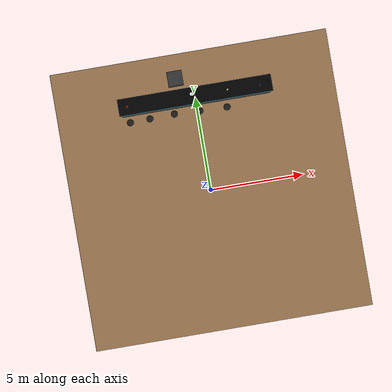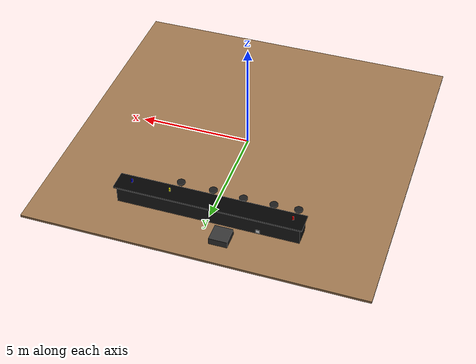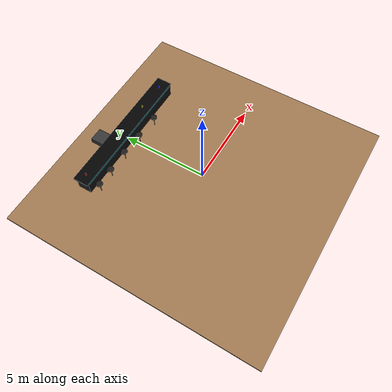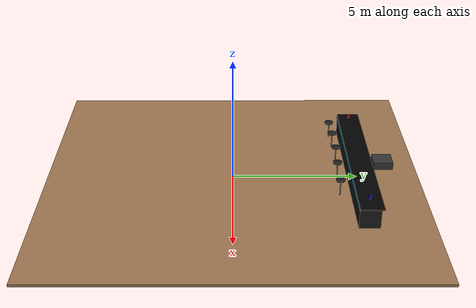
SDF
<sdf version="1.9">
 <world name="robotic_bar_world">
  <model name="ground_plane">
   <static>true</static>
   <link name="link">
    <collision name="c"><geometry><box><size>15 15 0.1</size></box></geometry></collision>
    <visual name="v">
     <geometry><box><size>15 15 0.1</size></box></geometry>
     <material>
      <ambient>0.6 0.45 0.3 1</ambient>
      <diffuse>0.6 0.45 0.3 1</diffuse>
      <specular>0.3 0.3 0.3 1</specular>
      <pbr><metal><roughness>0.5</roughness><metalness>0.0</metalness></metal></pbr>
     </material>
    </visual>
    <inertial>
     <mass>1</mass>
     <inertia><ixx>1</ixx><ixy>0</ixy><ixz>0</ixz><iyy>1</iyy><iyz>0</iyz><izz>1</izz></inertia>
    </inertial>
   </link>
  </model>
  <model name="bar_counter">
   <static>true</static>
   <pose>0 5.01799 0 0 -0 0</pose>
   <link name="link">
    <visual name="body">
     <pose>0 0 0.425 0 0 0</pose>
     <geometry><box><size>8 0.8 0.85</size></box></geometry>
     <material><ambient>0.1 0.1 0.1 1</ambient><specular>0.5 0.5 0.5 1</specular></material>
    </visual>
    <collision name="body_c">
     <pose>0 0 0.425 0 0 0</pose>
     <geometry><box><size>8 0.8 0.85</size></box></geometry>
    </collision>
    <visual name="top">
     <pose>0 0.05 0.875 0 0 0</pose>
     <geometry><box><size>8.2 0.9 0.05</size></box></geometry>
     <material><ambient>0 0 0 1</ambient><specular>0.9 0.9 0.9 1</specular></material>
    </visual>
    <collision name="top_c">
     <pose>0 0.05 0.875 0 0 0</pose>
     <geometry><box><size>8.2 0.9 0.05</size></box></geometry>
    </collision>
    <visual name="led">
     <pose>0 -0.41 0.8 0 0 0</pose>
     <geometry><box><size>8 0.02 0.05</size></box></geometry>
     <material><ambient>0 0.8 1 1</ambient><emissive>0 0.8 1 1</emissive></material>
    </visual>
    <inertial>
     <mass>1</mass>
     <inertia><ixx>1</ixx><ixy>0</ixy><ixz>0</ixz><iyy>1</iyy><iyz>0</iyz><izz>1</izz></inertia>
    </inertial>
   </link>
  </model>
  <model name="bottle_red">
   <static>false</static>
   <pose>-3.60529 5.05279 1.025 0 -0 0</pose>
   <link name="l">
    <inertial>
     <mass>0.1</mass>
     <inertia><ixx>0.0005</ixx><ixy>0</ixy><ixz>0</ixz><iyy>0.0005</iyy><iyz>0</iyz><izz>0.0005</izz></inertia>
    </inertial>
    <collision name="c">
     <geometry><cylinder><radius>0.04</radius><length>0.15</length></cylinder></geometry>
    </collision>
    <visual name="v">
     <geometry><cylinder><radius>0.04</radius><length>0.15</length></cylinder></geometry>
     <material><ambient>1 0 0 1</ambient><diffuse>1 0 0 1</diffuse></material>
    </visual>
   </link>
  </model>
  <model name="bottle_yellow">
   <static>false</static>
   <pose>1.73259 5.05279 1.025 0 -0 0</pose>
   <link name="l">
    <inertial>
     <mass>0.1</mass>
     <inertia><ixx>0.0005</ixx><ixy>0</ixy><ixz>0</ixz><iyy>0.0005</iyy><iyz>0</iyz><izz>0.0005</izz></inertia>
    </inertial>
    <collision name="c">
     <geometry><cylinder><radius>0.04</radius><length>0.15</length></cylinder></geometry>
    </collision>
    <visual name="v">
     <geometry><cylinder><radius>0.04</radius><length>0.15</length></cylinder></geometry>
     <material><ambient>1 1 0 1</ambient><diffuse>1 1 0 1</diffuse></material>
    </visual>
   </link>
  </model>
  <model name="bottle_blue">
   <static>false</static>
   <pose>3.42782 5.03167 1.025 0 -0 0</pose>
   <link name="l">
    <inertial>
     <mass>0.1</mass>
     <inertia><ixx>0.0005</ixx><ixy>0</ixy><ixz>0</ixz><iyy>0.0005</iyy><iyz>0</iyz><izz>0.0005</izz></inertia>
    </inertial>
    <collision name="c">
     <geometry><cylinder><radius>0.04</radius><length>0.15</length></cylinder></geometry>
    </collision>
    <visual name="v">
     <geometry><cylinder><radius>0.04</radius><length>0.15</length></cylinder></geometry>
     <material><ambient>0 0 1 1</ambient><diffuse>0 0 1 1</diffuse></material>
    </visual>
   </link>
  </model>
  <model name="stool_1">
   <static>true</static>
   <pose>-3.60018 4.21522 0 0 -0 0</pose>
   <link name="link">
    <visual name="leg">
     <pose>0 0 0.35 0 0 0</pose>
     <geometry><cylinder><radius>0.02</radius><length>0.69999999999999996</length></cylinder></geometry>
     <material>
      <ambient>0.8 0.8 0.8 1</ambient>
      <diffuse>0.8 0.8 0.8 1</diffuse>
      <specular>0.9 0.9 0.9 1</specular>
     </material>
    </visual>
    <visual name="base">
     <pose>0 0 0.01 0 0 0</pose>
     <geometry><cylinder><radius>0.20000000000000001</radius><length>0.02</length></cylinder></geometry>
     <material>
      <ambient>0.8 0.8 0.8 1</ambient>
      <diffuse>0.8 0.8 0.8 1</diffuse>
      <specular>0.9 0.9 0.9 1</specular>
     </material>
    </visual>
    <visual name="seat">
     <pose>0 0 0.72 0 0 0</pose>
     <geometry>
      <cylinder><radius>0.17999999999999999</radius><length>0.059999999999999998</length></cylinder>
     </geometry>
     <material>
      <ambient>0.1 0.1 0.1 1</ambient>
      <diffuse>0.1 0.1 0.1 1</diffuse>
      <specular>0.3 0.3 0.3 1</specular>
     </material>
    </visual>
    <collision name="c">
     <pose>0 0 0.375 0 0 0</pose>
     <geometry><cylinder><radius>0.20000000000000001</radius><length>0.75</length></cylinder></geometry>
    </collision>
    <inertial>
     <mass>1</mass>
     <inertia><ixx>1</ixx><ixy>0</ixy><ixz>0</ixz><iyy>1</iyy><iyz>0</iyz><izz>1</izz></inertia>
    </inertial>
   </link>
  </model>
  <model name="robot_pedestal">
   <static>true</static>
   <pose>-0.9 6.18 0.2 0 -0 0</pose>
   <link name="link">
    <visual name="v">
     <geometry><box><size>0.8 0.8 0.3</size></box></geometry>
     <material><ambient>0.2 0.2 0.2 1</ambient><diffuse>0.2 0.2 0.2 1</diffuse></material>
    </visual>
    <collision name="c"><geometry><box><size>0.8 0.8 0.2</size></box></geometry></collision>
    <inertial>
     <mass>1</mass>
     <inertia><ixx>1</ixx><ixy>0</ixy><ixz>0</ixz><iyy>1</iyy><iyz>0</iyz><izz>1</izz></inertia>
    </inertial>
   </link>
  </model>
  <model name="stool_2">
   <static>true</static>
   <pose>-2.54689 4.24823 0 0 -0 0</pose>
   <link name="link">
    <visual name="leg">
     <pose>0 0 0.35 0 0 0</pose>
     <geometry><cylinder><radius>0.02</radius><length>0.69999999999999996</length></cylinder></geometry>
     <material>
      <ambient>0.8 0.8 0.8 1</ambient>
      <diffuse>0.8 0.8 0.8 1</diffuse>
      <specular>0.9 0.9 0.9 1</specular>
     </material>
    </visual>
    <visual name="base">
     <pose>0 0 0.01 0 0 0</pose>
     <geometry><cylinder><radius>0.20000000000000001</radius><length>0.02</length></cylinder></geometry>
     <material>
      <ambient>0.8 0.8 0.8 1</ambient>
      <diffuse>0.8 0.8 0.8 1</diffuse>
      <specular>0.9 0.9 0.9 1</specular>
     </material>
    </visual>
    <visual name="seat">
     <pose>0 0 0.72 0 0 0</pose>
     <geometry>
      <cylinder><radius>0.17999999999999999</radius><length>0.059999999999999998</length></cylinder>
     </geometry>
     <material>
      <ambient>0.1 0.1 0.1 1</ambient>
      <diffuse>0.1 0.1 0.1 1</diffuse>
      <specular>0.3 0.3 0.3 1</specular>
     </material>
    </visual>
    <collision name="c">
     <pose>0 0 0.375 0 0 0</pose>
     <geometry><cylinder><radius>0.20000000000000001</radius><length>0.75</length></cylinder></geometry>
    </collision>
    <inertial>
     <mass>1</mass>
     <inertia><ixx>1</ixx><ixy>0</ixy><ixz>0</ixz><iyy>1</iyy><iyz>0</iyz><izz>1</izz></inertia>
    </inertial>
   </link>
  </model>
  <model name="stool_3">
   <static>true</static>
   <pose>-1.23456 4.27882 0 0 -0 0</pose>
   <link name="link">
    <visual name="leg">
     <pose>0 0 0.35 0 0 0</pose>
     <geometry><cylinder><radius>0.02</radius><length>0.69999999999999996</length></cylinder></geometry>
     <material>
      <ambient>0.8 0.8 0.8 1</ambient>
      <diffuse>0.8 0.8 0.8 1</diffuse>
      <specular>0.9 0.9 0.9 1</specular>
     </material>
    </visual>
    <visual name="base">
     <pose>0 0 0.01 0 0 0</pose>
     <geometry><cylinder><radius>0.20000000000000001</radius><length>0.02</length></cylinder></geometry>
     <material>
      <ambient>0.8 0.8 0.8 1</ambient>
      <diffuse>0.8 0.8 0.8 1</diffuse>
      <specular>0.9 0.9 0.9 1</specular>
     </material>
    </visual>
    <visual name="seat">
     <pose>0 0 0.72 0 0 0</pose>
     <geometry>
      <cylinder><radius>0.17999999999999999</radius><length>0.059999999999999998</length></cylinder>
     </geometry>
     <material>
      <ambient>0.1 0.1 0.1 1</ambient>
      <diffuse>0.1 0.1 0.1 1</diffuse>
      <specular>0.3 0.3 0.3 1</specular>
     </material>
    </visual>
    <collision name="c">
     <pose>0 0 0.375 0 0 0</pose>
     <geometry><cylinder><radius>0.20000000000000001</radius><length>0.75</length></cylinder></geometry>
    </collision>
    <inertial>
     <mass>1</mass>
     <inertia><ixx>1</ixx><ixy>0</ixy><ixz>0</ixz><iyy>1</iyy><iyz>0</iyz><izz>1</izz></inertia>
    </inertial>
   </link>
  </model>
  <model name="stool_4">
   <static>true</static>
   <pose>0.11866 4.21245 0 0 -0 0</pose>
   <link name="link">
    <visual name="leg">
     <pose>0 0 0.35 0 0 0</pose>
     <geometry><cylinder><radius>0.02</radius><length>0.69999999999999996</length></cylinder></geometry>
     <material>
      <ambient>0.8 0.8 0.8 1</ambient>
      <diffuse>0.8 0.8 0.8 1</diffuse>
      <specular>0.9 0.9 0.9 1</specular>
     </material>
    </visual>
    <visual name="base">
     <pose>0 0 0.01 0 0 0</pose>
     <geometry><cylinder><radius>0.20000000000000001</radius><length>0.02</length></cylinder></geometry>
     <material>
      <ambient>0.8 0.8 0.8 1</ambient>
      <diffuse>0.8 0.8 0.8 1</diffuse>
      <specular>0.9 0.9 0.9 1</specular>
     </material>
    </visual>
    <visual name="seat">
     <pose>0 0 0.72 0 0 0</pose>
     <geometry>
      <cylinder><radius>0.17999999999999999</radius><length>0.059999999999999998</length></cylinder>
     </geometry>
     <material>
      <ambient>0.1 0.1 0.1 1</ambient>
      <diffuse>0.1 0.1 0.1 1</diffuse>
      <specular>0.3 0.3 0.3 1</specular>
     </material>
    </visual>
    <collision name="c">
     <pose>0 0 0.375 0 0 0</pose>
     <geometry><cylinder><radius>0.20000000000000001</radius><length>0.75</length></cylinder></geometry>
    </collision>
    <inertial>
     <mass>1</mass>
     <inertia><ixx>1</ixx><ixy>0</ixy><ixz>0</ixz><iyy>1</iyy><iyz>0</iyz><izz>1</izz></inertia>
    </inertial>
   </link>
  </model>
  <model name="stool_5">
   <static>true</static>
   <pose>1.57147 4.18214 0 0 -0 0</pose>
   <link name="link">
    <visual name="leg">
     <pose>0 0 0.35 0 0 0</pose>
     <geometry><cylinder><radius>0.02</radius><length>0.69999999999999996</length></cylinder></geometry>
     <material>
      <ambient>0.8 0.8 0.8 1</ambient>
      <diffuse>0.8 0.8 0.8 1</diffuse>
      <specular>0.9 0.9 0.9 1</specular>
     </material>
    </visual>
    <visual name="base">
     <pose>0 0 0.01 0 0 0</pose>
     <geometry><cylinder><radius>0.20000000000000001</radius><length>0.02</length></cylinder></geometry>
     <material>
      <ambient>0.8 0.8 0.8 1</ambient>
      <diffuse>0.8 0.8 0.8 1</diffuse>
      <specular>0.9 0.9 0.9 1</specular>
     </material>
    </visual>
    <visual name="seat">
     <pose>0 0 0.72 0 0 0</pose>
     <geometry>
      <cylinder><radius>0.17999999999999999</radius><length>0.059999999999999998</length></cylinder>
     </geometry>
     <material>
      <ambient>0.1 0.1 0.1 1</ambient>
      <diffuse>0.1 0.1 0.1 1</diffuse>
      <specular>0.3 0.3 0.3 1</specular>
     </material>
    </visual>
    <collision name="c">
     <pose>0 0 0.375 0 0 0</pose>
     <geometry><cylinder><radius>0.20000000000000001</radius><length>0.75</length></cylinder></geometry>
    </collision>
    <inertial>
     <mass>1</mass>
     <inertia><ixx>1</ixx><ixy>0</ixy><ixz>0</ixz><iyy>1</iyy><iyz>0</iyz><izz>1</izz></inertia>
    </inertial>
   </link>
  </model>
  <include>
   <uri>model://marker_0</uri>
   <name>docking_station_tag</name>
   <pose>-2.21 5.42 0.17 -1.57 0 0</pose>
  </include>
 </world>
</sdf>
